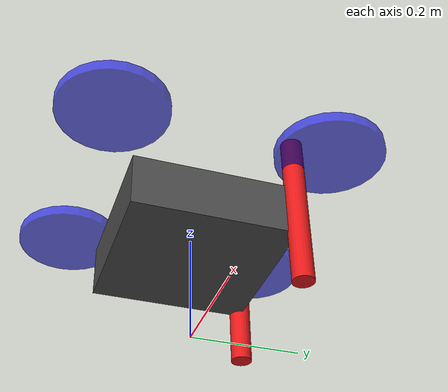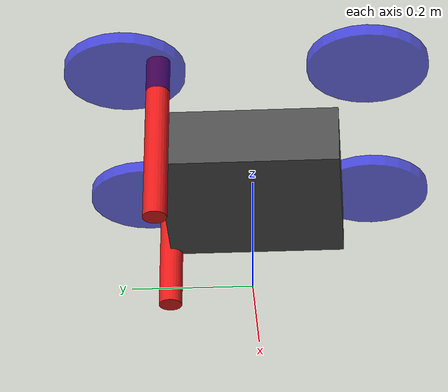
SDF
<?xml version="1.0"?>
<sdf version="1.6">
  <model name="quadcopter">
    <pose>0 0 0.2 0 0 0</pose>

    <link name="base_link">
      <gravity>0</gravity>
      <inertial>
        <mass>1.5</mass>
        <inertia>
          <ixx>0.029</ixx>
          <ixy>0</ixy>
          <ixz>0</ixz>
          <iyy>0.029</iyy>
          <iyz>0</iyz>
          <izz>0.055</izz>
        </inertia>
      </inertial>

      <!-- Body -->
      <collision name="collision_body">
        <geometry>
          <box>
            <size>0.3 0.3 0.1</size>
          </box>
        </geometry>
      </collision>

      <visual name="visual_body">
        <geometry>
          <box>
            <size>0.3 0.3 0.1</size>
          </box>
        </geometry>
        <material>
          <ambient>0.2 0.2 0.2 1</ambient>
          <diffuse>0.3 0.3 0.3 1</diffuse>
          <specular>0.5 0.5 0.5 1</specular>
        </material>
      </visual>

      <!-- Arms visualization -->
      <visual name="visual_arm1">
        <pose>0.15 0.15 0 0 0 0.785</pose>
        <geometry>
          <cylinder>
            <radius>0.02</radius>
            <length>0.3</length>
          </cylinder>
        </geometry>
        <material>
          <ambient>0.8 0.1 0.1 1</ambient>
          <diffuse>0.9 0.1 0.1 1</diffuse>
        </material>
      </visual>

      <visual name="visual_arm2">
        <pose>-0.15 0.15 0 0 0 -0.785</pose>
        <geometry>
          <cylinder>
            <radius>0.02</radius>
            <length>0.3</length>
          </cylinder>
        </geometry>
        <material>
          <ambient>0.8 0.1 0.1 1</ambient>
          <diffuse>0.9 0.1 0.1 1</diffuse>
        </material>
      </visual>

      <!-- Propellers -->
      <visual name="visual_prop1">
        <pose>0.2 0.2 0.1 0 0 0</pose>
        <geometry>
          <cylinder>
            <radius>0.1</radius>
            <length>0.02</length>
          </cylinder>
        </geometry>
        <material>
          <ambient>0.1 0.1 0.8 0.7</ambient>
          <diffuse>0.1 0.1 0.9 0.7</diffuse>
        </material>
      </visual>

      <visual name="visual_prop2">
        <pose>-0.2 0.2 0.1 0 0 0</pose>
        <geometry>
          <cylinder>
            <radius>0.1</radius>
            <length>0.02</length>
          </cylinder>
        </geometry>
        <material>
          <ambient>0.1 0.1 0.8 0.7</ambient>
          <diffuse>0.1 0.1 0.9 0.7</diffuse>
        </material>
      </visual>

      <visual name="visual_prop3">
        <pose>0.2 -0.2 0.1 0 0 0</pose>
        <geometry>
          <cylinder>
            <radius>0.1</radius>
            <length>0.02</length>
          </cylinder>
        </geometry>
        <material>
          <ambient>0.1 0.1 0.8 0.7</ambient>
          <diffuse>0.1 0.1 0.9 0.7</diffuse>
        </material>
      </visual>

      <visual name="visual_prop4">
        <pose>-0.2 -0.2 0.1 0 0 0</pose>
        <geometry>
          <cylinder>
            <radius>0.1</radius>
            <length>0.02</length>
          </cylinder>
        </geometry>
        <material>
          <ambient>0.1 0.1 0.8 0.7</ambient>
          <diffuse>0.1 0.1 0.9 0.7</diffuse>
        </material>
      </visual>

    </link>

    <!-- Planar move plugin for simplified drone control -->
    <plugin name="object_controller" filename="libgazebo_ros_planar_move.so">
      <commandTopic>cmd_vel</commandTopic>
      <odometryTopic>odom</odometryTopic>
      <odometryFrame>odom</odometryFrame>
      <odometryRate>20.0</odometryRate>
      <robotBaseFrame>base_link</robotBaseFrame>
    </plugin>

  </model>
</sdf>
